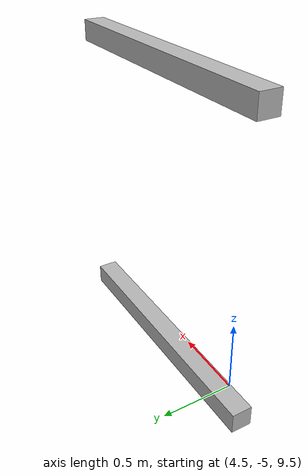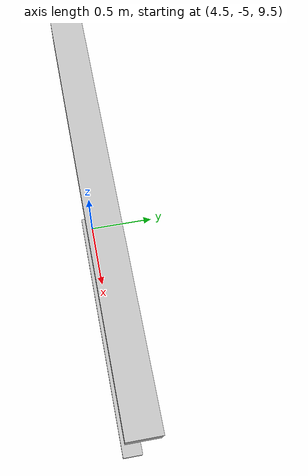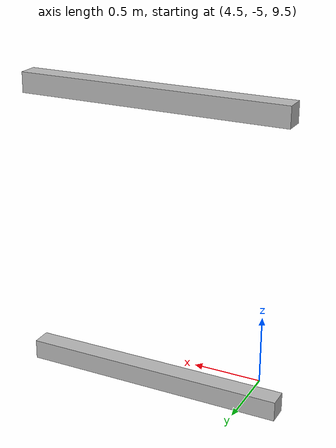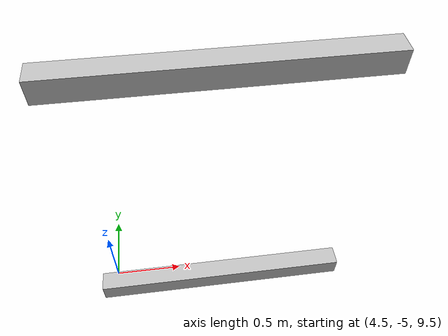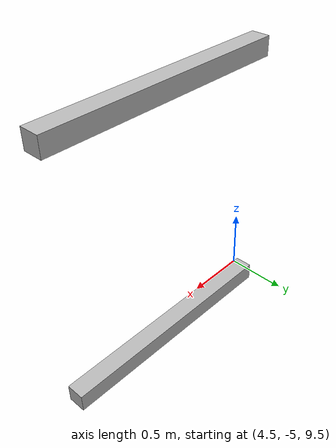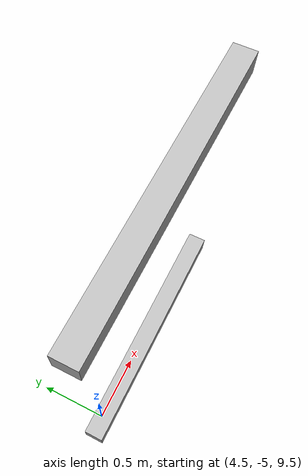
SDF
<sdf version="1.7">
 <world name="default">
  <model name="orthogonal_747_2.000.15_TS">
   <static>1</static>
   <link name="x_link_5_0_5">
    <inertial>
     <mass>1</mass>
     <inertia>
      <ixx>0.166667</ixx>
      <ixy>0</ixy>
      <ixz>0</ixz>
      <iyy>0.166667</iyy>
      <iyz>0</iyz>
      <izz>0.166667</izz>
     </inertia>
    </inertial>
    <pose>11.825 0 11.825 0 -0 0</pose>
    <visual name="visual_0">
     <laser_retro>4502</laser_retro>
     <geometry><box><size>2 1e-06 0.15</size></box></geometry>
     <material>
      <script><name>Gazebo/Grey</name><uri>file://media/materials/scripts/gazebo.material</uri></script>
      <shader type="pixel"><normal_map>__default__</normal_map></shader>
      <ambient>0.678 0.498 0.659 1</ambient>
      <diffuse>0.7 0.7 0.7 1</diffuse>
      <specular>0.01 0.01 0.01 1</specular>
      <emissive>0 0 0 1</emissive>
     </material>
     <pose>0 -0.075 0 0 -0 0</pose>
     <transparency>1</transparency>
    </visual>
    <visual name="visual_1">
     <laser_retro>4503</laser_retro>
     <geometry><box><size>2 1e-06 0.15</size></box></geometry>
     <material>
      <script><name>Gazebo/Grey</name><uri>file://media/materials/scripts/gazebo.material</uri></script>
      <shader type="pixel"><normal_map>__default__</normal_map></shader>
      <ambient>0.447 0.624 0.812 1</ambient>
      <diffuse>0.7 0.7 0.7 1</diffuse>
      <specular>0.01 0.01 0.01 1</specular>
      <emissive>0 0 0 1</emissive>
     </material>
     <pose>0 0.075 0 0 -0 0</pose>
     <transparency>1</transparency>
    </visual>
    <visual name="visual_2">
     <laser_retro>4504</laser_retro>
     <geometry><box><size>2 0.15 1e-06</size></box></geometry>
     <material>
      <script><name>Gazebo/Grey</name><uri>file://media/materials/scripts/gazebo.material</uri></script>
      <shader type="pixel"><normal_map>__default__</normal_map></shader>
      <ambient>0.988 0.686 0.243 1</ambient>
      <diffuse>0.7 0.7 0.7 1</diffuse>
      <specular>0.01 0.01 0.01 1</specular>
      <emissive>0 0 0 1</emissive>
     </material>
     <pose>0 0 -0.075 0 -0 0</pose>
     <transparency>1</transparency>
    </visual>
    <visual name="visual_3">
     <laser_retro>4505</laser_retro>
     <geometry><box><size>1e-06 0.15 0.15</size></box></geometry>
     <material>
      <script><name>Gazebo/Grey</name><uri>file://media/materials/scripts/gazebo.material</uri></script>
      <shader type="pixel"><normal_map>__default__</normal_map></shader>
      <ambient>0.988 0.914 0.31 1</ambient>
      <diffuse>0.7 0.7 0.7 1</diffuse>
      <specular>0.01 0.01 0.01 1</specular>
      <emissive>0 0 0 1</emissive>
     </material>
     <pose>1 0 0 0 -0 0</pose>
     <transparency>1</transparency>
    </visual>
    <visual name="visual_4">
     <laser_retro>4506</laser_retro>
     <geometry><box><size>2 0.15 1e-06</size></box></geometry>
     <material>
      <script><name>Gazebo/Grey</name><uri>file://media/materials/scripts/gazebo.material</uri></script>
      <shader type="pixel"><normal_map>__default__</normal_map></shader>
      <ambient>0.937 0.161 0.161 1</ambient>
      <diffuse>0.7 0.7 0.7 1</diffuse>
      <specular>0.01 0.01 0.01 1</specular>
      <emissive>0 0 0 1</emissive>
     </material>
     <pose>0 0 0.075 0 -0 0</pose>
     <transparency>1</transparency>
    </visual>
    <visual name="visual_5">
     <laser_retro>4507</laser_retro>
     <geometry><box><size>1e-06 0.15 0.15</size></box></geometry>
     <material>
      <script><name>Gazebo/Grey</name><uri>file://media/materials/scripts/gazebo.material</uri></script>
      <shader type="pixel"><normal_map>__default__</normal_map></shader>
      <ambient>0.541 0.886 0.204 1</ambient>
      <diffuse>0.7 0.7 0.7 1</diffuse>
      <specular>0.01 0.01 0.01 1</specular>
      <emissive>0 0 0 1</emissive>
     </material>
     <pose>-1 0 0 0 -0 0</pose>
     <transparency>1</transparency>
    </visual>
    <visual name="visual_texture">
     <geometry><box><size>1.9998 0.149985 0.149985</size></box></geometry>
     <material>
      <script>
       <uri>model://BASE_MODELS/simple_block_v2_textured/materials/scripts</uri>
       <uri>model://BASE_MODELS/simple_block_v2_textured/materials/textures</uri>
       <name>metal</name>
      </script>
     </material>
     <laser_retro>4508</laser_retro>
    </visual>
    <collision name="collision">
     <geometry><box><size>2 0.15 0.15</size></box></geometry>
     <surface>
      <friction>
       <ode><mu>1</mu><mu2>1</mu2><fdir1>0 0 0</fdir1><slip1>0</slip1><slip2>0</slip2></ode>
       <torsional>
        <coefficient>1</coefficient>
        <patch_radius>0</patch_radius>
        <surface_radius>0</surface_radius>
        <use_patch_radius>1</use_patch_radius>
        <ode><slip>0</slip></ode>
       </torsional>
      </friction>
      <bounce><restitution_coefficient>0</restitution_coefficient><threshold>1e+06</threshold></bounce>
      <contact>
       <collide_without_contact>0</collide_without_contact>
       <collide_without_contact_bitmask>1</collide_without_contact_bitmask>
       <collide_bitmask>1</collide_bitmask>
       <ode>
        <soft_cfm>0</soft_cfm>
        <soft_erp>0.2</soft_erp>
        <kp>1e+13</kp>
        <kd>1</kd>
        <max_vel>0.01</max_vel>
        <min_depth>0</min_depth>
       </ode>
       <bullet>
        <split_impulse>1</split_impulse>
        <split_impulse_penetration_threshold>-0.01</split_impulse_penetration_threshold>
        <soft_cfm>0</soft_cfm>
        <soft_erp>0.2</soft_erp>
        <kp>1e+13</kp>
        <kd>1</kd>
       </bullet>
      </contact>
     </surface>
    </collision>
   </link>
   <link name="x_link_6_0_5">
    <inertial>
     <mass>1</mass>
     <inertia>
      <ixx>0.166667</ixx>
      <ixy>0</ixy>
      <ixz>0</ixz>
      <iyy>0.166667</iyy>
      <iyz>0</iyz>
      <izz>0.166667</izz>
     </inertia>
    </inertial>
    <pose>11.825 0 13.975 0 -0 0</pose>
    <visual name="visual_0">
     <laser_retro>5405</laser_retro>
     <geometry><box><size>2 1e-06 0.15</size></box></geometry>
     <material>
      <script><name>Gazebo/Grey</name><uri>file://media/materials/scripts/gazebo.material</uri></script>
      <shader type="pixel"><normal_map>__default__</normal_map></shader>
      <ambient>0.678 0.498 0.659 1</ambient>
      <diffuse>0.7 0.7 0.7 1</diffuse>
      <specular>0.01 0.01 0.01 1</specular>
      <emissive>0 0 0 1</emissive>
     </material>
     <pose>0 -0.075 0 0 -0 0</pose>
     <transparency>1</transparency>
    </visual>
    <visual name="visual_1">
     <laser_retro>5406</laser_retro>
     <geometry><box><size>2 1e-06 0.15</size></box></geometry>
     <material>
      <script><name>Gazebo/Grey</name><uri>file://media/materials/scripts/gazebo.material</uri></script>
      <shader type="pixel"><normal_map>__default__</normal_map></shader>
      <ambient>0.447 0.624 0.812 1</ambient>
      <diffuse>0.7 0.7 0.7 1</diffuse>
      <specular>0.01 0.01 0.01 1</specular>
      <emissive>0 0 0 1</emissive>
     </material>
     <pose>0 0.075 0 0 -0 0</pose>
     <transparency>1</transparency>
    </visual>
    <visual name="visual_2">
     <laser_retro>5407</laser_retro>
     <geometry><box><size>2 0.15 1e-06</size></box></geometry>
     <material>
      <script><name>Gazebo/Grey</name><uri>file://media/materials/scripts/gazebo.material</uri></script>
      <shader type="pixel"><normal_map>__default__</normal_map></shader>
      <ambient>0.988 0.686 0.243 1</ambient>
      <diffuse>0.7 0.7 0.7 1</diffuse>
      <specular>0.01 0.01 0.01 1</specular>
      <emissive>0 0 0 1</emissive>
     </material>
     <pose>0 0 -0.075 0 -0 0</pose>
     <transparency>1</transparency>
    </visual>
    <visual name="visual_3">
     <laser_retro>5408</laser_retro>
     <geometry><box><size>1e-06 0.15 0.15</size></box></geometry>
     <material>
      <script><name>Gazebo/Grey</name><uri>file://media/materials/scripts/gazebo.material</uri></script>
      <shader type="pixel"><normal_map>__default__</normal_map></shader>
      <ambient>0.988 0.914 0.31 1</ambient>
      <diffuse>0.7 0.7 0.7 1</diffuse>
      <specular>0.01 0.01 0.01 1</specular>
      <emissive>0 0 0 1</emissive>
     </material>
     <pose>1 0 0 0 -0 0</pose>
     <transparency>1</transparency>
    </visual>
    <visual name="visual_4">
     <laser_retro>5409</laser_retro>
     <geometry><box><size>2 0.15 1e-06</size></box></geometry>
     <material>
      <script><name>Gazebo/Grey</name><uri>file://media/materials/scripts/gazebo.material</uri></script>
      <shader type="pixel"><normal_map>__default__</normal_map></shader>
      <ambient>0.937 0.161 0.161 1</ambient>
      <diffuse>0.7 0.7 0.7 1</diffuse>
      <specular>0.01 0.01 0.01 1</specular>
      <emissive>0 0 0 1</emissive>
     </material>
     <pose>0 0 0.075 0 -0 0</pose>
     <transparency>1</transparency>
    </visual>
    <visual name="visual_5">
     <laser_retro>5410</laser_retro>
     <geometry><box><size>1e-06 0.15 0.15</size></box></geometry>
     <material>
      <script><name>Gazebo/Grey</name><uri>file://media/materials/scripts/gazebo.material</uri></script>
      <shader type="pixel"><normal_map>__default__</normal_map></shader>
      <ambient>0.541 0.886 0.204 1</ambient>
      <diffuse>0.7 0.7 0.7 1</diffuse>
      <specular>0.01 0.01 0.01 1</specular>
      <emissive>0 0 0 1</emissive>
     </material>
     <pose>-1 0 0 0 -0 0</pose>
     <transparency>1</transparency>
    </visual>
    <visual name="visual_texture">
     <geometry><box><size>1.9998 0.149985 0.149985</size></box></geometry>
     <material>
      <script>
       <uri>model://BASE_MODELS/simple_block_v2_textured/materials/scripts</uri>
       <uri>model://BASE_MODELS/simple_block_v2_textured/materials/textures</uri>
       <name>metal</name>
      </script>
     </material>
     <laser_retro>5411</laser_retro>
    </visual>
    <collision name="collision">
     <geometry><box><size>2 0.15 0.15</size></box></geometry>
     <surface>
      <friction>
       <ode><mu>1</mu><mu2>1</mu2><fdir1>0 0 0</fdir1><slip1>0</slip1><slip2>0</slip2></ode>
       <torsional>
        <coefficient>1</coefficient>
        <patch_radius>0</patch_radius>
        <surface_radius>0</surface_radius>
        <use_patch_radius>1</use_patch_radius>
        <ode><slip>0</slip></ode>
       </torsional>
      </friction>
      <bounce><restitution_coefficient>0</restitution_coefficient><threshold>1e+06</threshold></bounce>
      <contact>
       <collide_without_contact>0</collide_without_contact>
       <collide_without_contact_bitmask>1</collide_without_contact_bitmask>
       <collide_bitmask>1</collide_bitmask>
       <ode>
        <soft_cfm>0</soft_cfm>
        <soft_erp>0.2</soft_erp>
        <kp>1e+13</kp>
        <kd>1</kd>
        <max_vel>0.01</max_vel>
        <min_depth>0</min_depth>
       </ode>
       <bullet>
        <split_impulse>1</split_impulse>
        <split_impulse_penetration_threshold>-0.01</split_impulse_penetration_threshold>
        <soft_cfm>0</soft_cfm>
        <soft_erp>0.2</soft_erp>
        <kp>1e+13</kp>
        <kd>1</kd>
       </bullet>
      </contact>
     </surface>
    </collision>
   </link>
   <pose>-6.47624 -5 -2.5 0 -0 0</pose>
  </model>
 </world>
</sdf>
